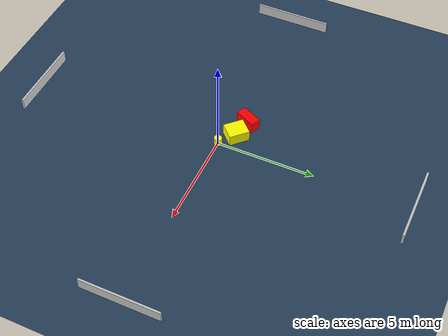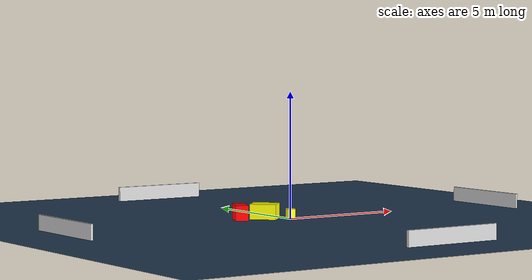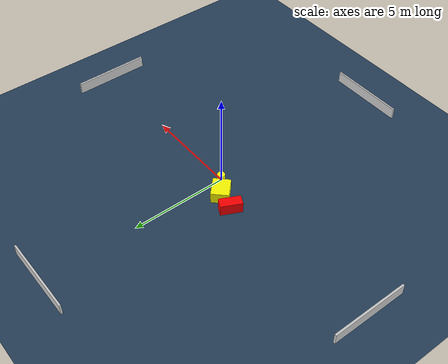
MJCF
<?xml version="1.0" ?>
<mujoco model="generated_environment">
  <option timestep="0.01" integrator="RK4" cone="elliptic"/>
  <default>
    <geom density="1"/>
  </default>
  <asset>
    <texture builtin="gradient" height="3072" name="skybox" rgb1="0.3 0.5 0.7" rgb2="0 0 0" type="skybox" width="512"/>
    <texture builtin="checker" height="300" name="groundplane" rgb1="0.2 0.3 0.4" rgb2="0.1 0.2 0.3" type="2d" width="300"/>
    <material name="groundplane" reflectance="0.2" texrepeat="5 5" texture="groundplane"/>
  </asset>
  <worldbody>
    <light dir="0 0 -1" directional="true" pos="0 0 1.5"/>
    <geom condim="3" friction="0.5 0.005 0.001" material="groundplane" name="floor" pos="0 0 0" size="0 0 0.05" type="plane"/>
    <body name="walls">
      <geom name="wall_1" condim="4" pos="-10.0 0.0 0.3" rgba="0.800000011920929 0.800000011920929 0.800000011920929 1.0" size="0.05 2.0 0.3" type="box"/>
      <geom name="wall_2" condim="4" pos="10.0 0.0 0.3" rgba="0.800000011920929 0.800000011920929 0.800000011920929 1.0" size="0.05 2.0 0.3" type="box"/>
      <geom name="wall_3" condim="4" pos="0.0 -10.0 0.3" rgba="0.800000011920929 0.800000011920929 0.800000011920929 1.0" size="2.0 0.05 0.3" type="box"/>
      <geom name="wall_4" condim="4" pos="0.0 10.0 0.3" rgba="0.800000011920929 0.800000011920929 0.800000011920929 1.0" size="2.0 0.05 0.3" type="box"/>
    </body>
    <body name="robot">
      <joint name="joint_x" type="slide" pos="0 0 0" axis="1 0 0"/>
      <joint name="joint_y" type="slide" pos="0 0 0" axis="0 1 0"/>
      <geom name="robot" type="cylinder" pos="0.0 0.0 0.2" size="0.2 0.2 0.0" mass="5.0" friction="1.0 0.005 0.0001" condim="4" rgba="1.0 1.0 0.0 1.0"/>
    </body>
    <body name="obstacle_1_movable">
      <geom name="obstacle_1_movable" condim="4" pos="-0.7894163284664715 0.6362209980709372 0.3" euler="0 0 315.62971909402677" friction="0.0 0.005 0.001" rgba="1.0 1.0 0.0 1.0" size="0.5210399023563361 0.44426955082510355 0.3" type="box" mass="0.1"/>
      <joint type="free"/>
    </body>
    <body name="obstacle_2_static">
      <geom name="obstacle_2_static" condim="4" pos="-1.8011849357411895 0.8475604686052328 0.3" euler="0 0 154.08372125166923" friction="0.0 0.005 0.001" rgba="1.0 0.0 0.0 1.0" size="0.25870168470749744 0.5537061054490231 0.3" type="box"/>
    </body>
  </worldbody>
  <actuator>
    <motor name="actuator_x" joint="joint_x" gear="1" ctrlrange="-1 1"/>
    <motor name="actuator_y" joint="joint_y" gear="1" ctrlrange="-1 1"/>
  </actuator>
</mujoco>
